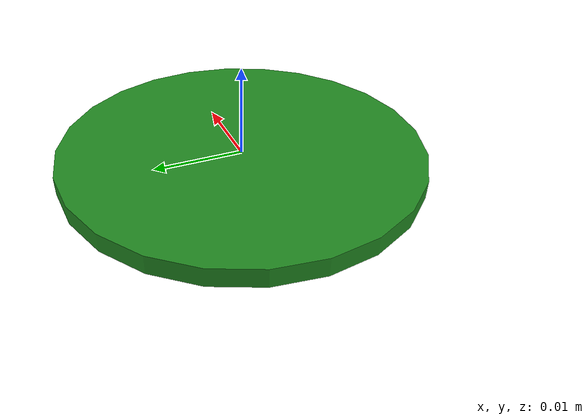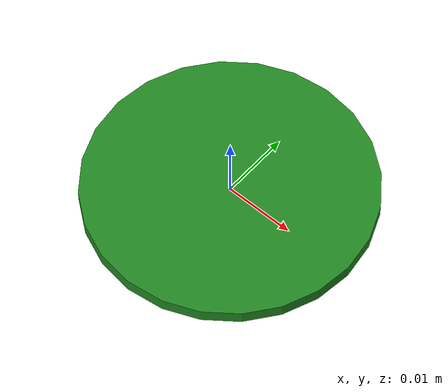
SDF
<?xml version='1.0'?>
<sdf version='1.6'>
  <model name='goal_point'>
    <pose frame=''>0 0 0 0 -0 -1.5708</pose>
    <link name='goal_point'>
      <visual name='goal_point'>
        <pose frame=''>0 0 0.0005 0 -0 0</pose>
        <geometry>
          <cylinder>
            <radius>0.02</radius>
            <length>0.002</length>
          </cylinder>
        </geometry>
        <material>
          <script>
            <uri>file://media/materials/scripts/gazebo.material</uri>
            <name>Gazebo/Grey</name>
          </script>
          <ambient>0.13 0.54 0.13 1</ambient> <!-- Mars Green -->
        </material>
      </visual>
      <pose frame=''>0 0 0 0 -0 0</pose>
    </link>
    <static>1</static>
  </model>
</sdf>
